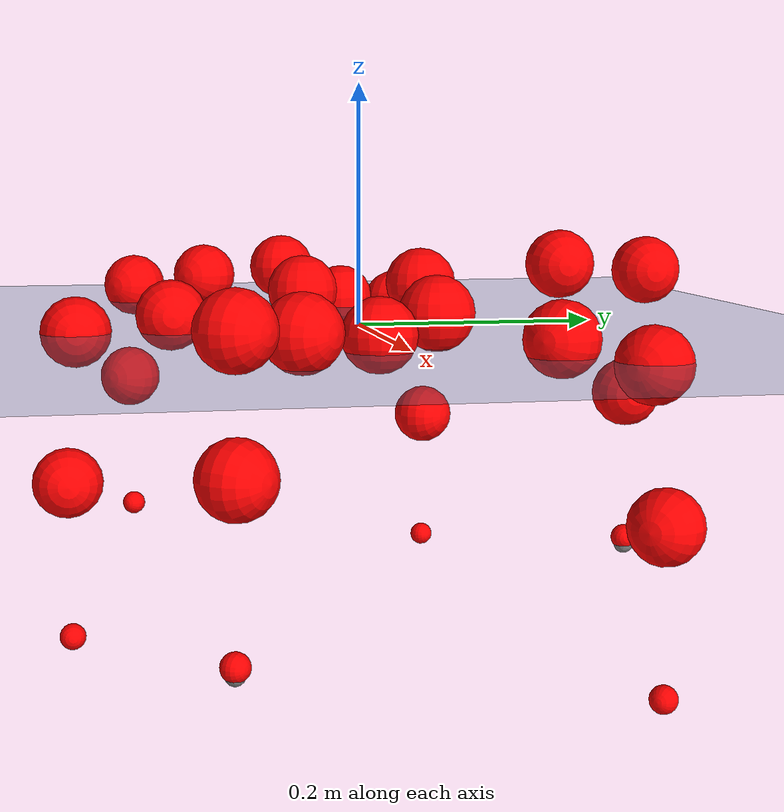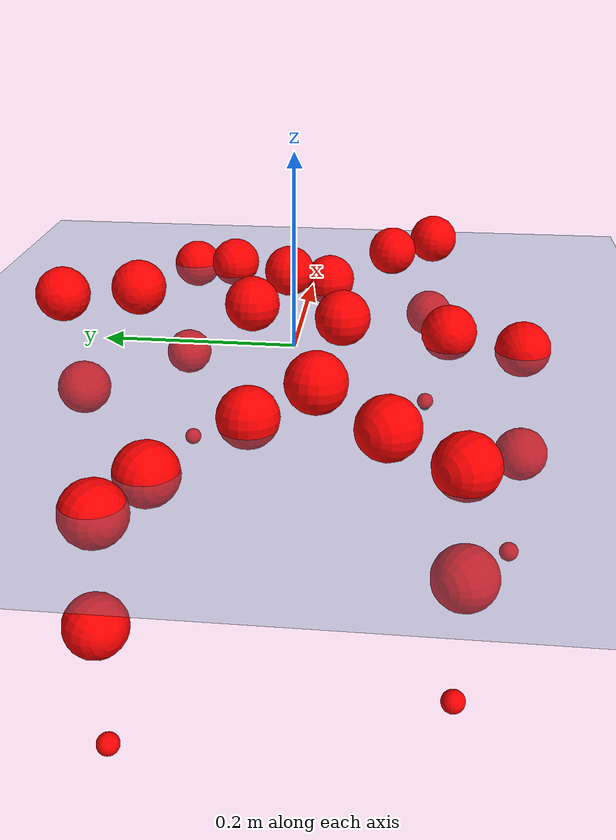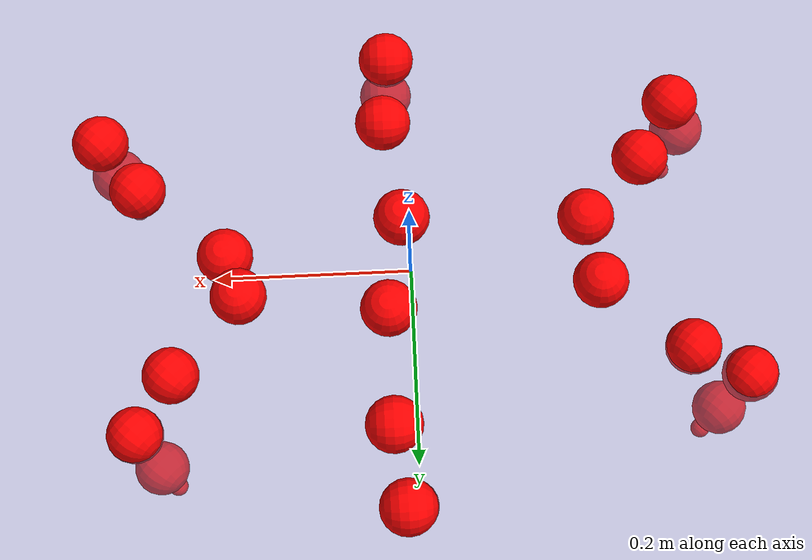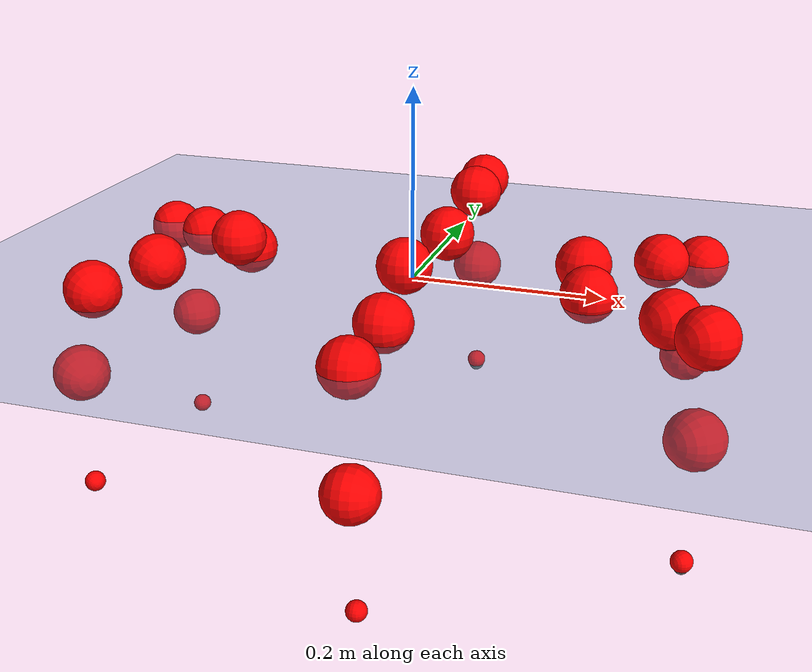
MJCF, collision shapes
<mujoco model="Golem">
  <compiler angle="radian" assetdir="assets" balanceinertia="true" inertiafromgeom="false"/>

  <option timestep="0.005" density="1.2" viscosity="2e-05"/>

  <size nkey="1"/>

  <visual>
    <quality shadowsize="8192"/>
    <map shadowclip="0.5"/>
  </visual>

  <default>
    <default class="/">
      <joint armature="0.01" damping="0.01" frictionloss="0.01"/>
      <geom contype="0" conaffinity="0" group="1" solref="-1000 -80"/>
      <site size="0.01 0.005 0.005" group="5"/>
      <general forcelimited="true" biastype="affine" gainprm="25" biasprm="0 -25 -0.5"/>
      <default class="visual">
        <geom type="mesh" group="2"/>
      </default>
      <default class="collision">
        <geom group="3"/>
      </default>
      <default class="foot">
        <geom size="0.01 0 0" condim="6" group="4" priority="1" solimp="0.015 1 0.01"/>
      </default>
      <default class="reward_collision_sphere">
        <geom group="5" rgba="1 0 0 1"/>
      </default>
    </default>
  </default>

  <asset>
    <texture type="skybox" colorspace="auto" name="//unnamed_texture_0" builtin="gradient" rgb1="0.95 0.95 0.95" rgb2="0.95 0.95 0.95" width="100" height="600"/>
    <texture type="2d" colorspace="auto" name="texplane" builtin="checker" rgb1="0.345 0.575 0.748" rgb2="0.345 0.575 0.748" markrgb="1 1 1" width="512" height="512"/>
    <material name="MatPlane" class="/" texture="texplane" texuniform="true" texrepeat="2 2" specular="0.9"/>
    <mesh name="body" class="/" file="body.stl" scale="0.001 0.001 0.001"/>
    <mesh name="coxa" class="/" file="coxa.stl" scale="0.001 0.001 0.001"/>
    <mesh name="femur" class="/" file="femur.stl" scale="0.001 0.001 0.001"/>
    <mesh name="tibia" class="/" file="tibia.stl" scale="0.001 0.001 0.001"/>
    <mesh name="tarsus" class="/" file="tarsus.stl" scale="0.001 0.001 0.001"/>
  </asset>

  <worldbody>
    <geom name="floor" class="/" size="100 100 0.125" type="plane" group="0" material="MatPlane"/>
    <light name="toplight_shadow" class="/" pos="0 0 5" dir="0.0990148 0.0990148 -0.990148" type="directional" ambient="0.04 0.04 0.04" diffuse="0.55 0.55 0.55" specular="0.12 0.12 0.12"/>
    <light name="toplight_fill" class="/" pos="0 0 5" dir="0.0990148 0.0990148 -0.990148" type="directional" castshadow="false" ambient="0.04 0.04 0.04" diffuse="0.3 0.3 0.3" specular="0.08 0.08 0.08"/>
    <body name="trunk" pos="0.00594934 -0.00627931 0.0074352" quat="0.999993 0.00118913 -0.000194056 0.00352976">
      <inertial pos="-0.0140178 -0.00746678 0.00244493" quat="0.998434 -0.00054372 0.0262671 0.0493971" mass="1.14407" diaginertia="0.0139108 0.000980409 1.71966e-05"/>
      <joint name="//unnamed_joint_0" type="free"/>
      <geom name="//unnamed_geom_1" class="/" pos="0 0 0.0195557" quat="1 0 0 0" type="mesh" rgba="0.9 0.9 0.9 1" mesh="body"/>
      <site name="imu" class="/" pos="0.130852 -0.0290209 0.114291" size="0.00718785"/>
      <camera name="track" class="/" pos="0 -1.34332 0" quat="0.707107 0.707107 0 0" mode="trackcom"/>
      <camera name="ego_camera" class="/" pos="0.153288 0 0.0305557" quat="-0.5 -0.5 0.5 0.5"/>
      <body name="coxa_RR" pos="-0.210237 -0.056113 0.0301423" quat="0.383245 0.000153791 -0.000617712 -0.923647">
        <inertial pos="0.00116363 0.0113884 0.00141905" quat="0.999944 0.00802797 -0.00160958 0.00663311" mass="0.0903082" diaginertia="0.0257581 0.00177611 2.67514e-05"/>
        <joint name="coxa_joint_RR" class="/" pos="0 0 0" axis="0.0358139 0.0861189 -0.995641" range="-2.88706 3.14922" armature="0.00410506" damping="0.0581547" frictionloss="0.00702704"/>
        <geom name="//unnamed_geom_2" class="/" type="mesh" rgba="0.2 0.2 0.2 1" mesh="coxa"/>
        <geom name="//unnamed_geom_3" class="reward_collision_sphere" size="0.0287514" pos="-0.0353742 0 0"/>
        <body name="femur_RR" pos="0.0541965 0.00215035 -0.0111106" quat="0.501585 -0.497946 0.504051 0.496382">
          <inertial pos="-0.00746316 -0.00248415 0.0117248" quat="0.999881 0.00772912 -0.0133282 -0.00111282" mass="0.0959186" diaginertia="0.0214582 0.00157445 2.74036e-05"/>
          <joint name="femur_joint_RR" class="/" pos="0 0 0" axis="-0.0782541 -0.0149249 -0.996822" stiffness="0.0197235" range="-3.13924 2.96662" armature="0.00696285" damping="0.0036089" frictionloss="0.00356359"/>
          <geom name="//unnamed_geom_4" class="/" type="mesh" rgba="0.9 0.9 0.9 1" mesh="femur"/>
          <geom name="//unnamed_geom_5" class="reward_collision_sphere" size="0.0287514"/>
          <body name="tibia_RR" pos="0.0113255 -0.0719719 0.0185478" quat="-0.000134227 1 4.95613e-05 -6.05669e-06">
            <inertial pos="0.00406027 0.0173631 -0.00422383" quat="0.996176 -0.0540816 -0.0344006 -0.0593788" mass="0.0739768" diaginertia="0.0191666 0.00146207 2.52791e-05"/>
            <joint name="tibia_joint_RR" class="/" pos="0 0 0" axis="-0.061964 -0.0181005 0.997914" range="-3.39509 3.2893" armature="0.00756662" damping="0" frictionloss="0.0105154"/>
            <geom name="//unnamed_geom_6" class="/" type="mesh" rgba="0.2 0.2 0.2 1" mesh="tibia"/>
            <geom name="//unnamed_geom_7" class="reward_collision_sphere" size="0.0287514"/>
            <body name="tarsus_RR" pos="0.0917754 0.0175208 0.0110367" quat="0.999983 -0.00177923 -0.00171192 -0.00520934">
              <inertial pos="0.072236 0.00275697 0.0129317" quat="0.551917 0.51652 0.443706 0.481372" mass="0.0679532" diaginertia="0.0269715 0.00129915 3.54822e-05"/>
              <joint name="tarsus_joint_RR" class="/" pos="0 0 0" axis="0.00675806 -0.0110957 0.999916" stiffness="0.0366999" range="-2.88471 3.26224" armature="0.0105896" damping="0" frictionloss="0.00203597"/>
              <geom name="//unnamed_geom_8" class="/" type="mesh" rgba="0.9 0.9 0.9 1" mesh="tarsus"/>
              <geom name="foot_1" class="foot" size="0.00421529" pos="0.132064 0 0" quat="0 -0.707107 0 0.707107"/>
              <geom name="//unnamed_geom_10" class="reward_collision_sphere" size="0.0287514"/>
              <geom name="//unnamed_geom_11" class="reward_collision_sphere" size="0.0107818" pos="0.126757 0 0"/>
              <site name="foot_1" class="foot" pos="0.132064 0 0" quat="0 -0.707107 0 0.707107" size="0.00718785"/>
            </body>
          </body>
        </body>
      </body>
      <body name="coxa_RM" pos="0.000250411 -0.0780243 0.0226696" quat="0.702927 0.00721487 -0.00162666 -0.711223">
        <inertial pos="-0.0131811 -0.00273959 0.0153984" quat="0.999988 -0.00192902 0.00051351 0.00457525" mass="0.0823287" diaginertia="0.0217424 0.00112475 2.82831e-05"/>
        <joint name="coxa_joint_RM" class="/" pos="0 0 0" axis="-0.0104034 0.0326175 -0.999414" range="-3.22494 3.18058" armature="0.00157463" damping="0.0336938" frictionloss="0.00391291"/>
        <geom name="//unnamed_geom_12" class="/" type="mesh" rgba="0.2 0.2 0.2 1" mesh="coxa"/>
        <geom name="//unnamed_geom_13" class="reward_collision_sphere" size="0.0287514" pos="-0.0353742 0 0"/>
        <body name="femur_RM" pos="0.0746915 0.0155476 -0.0163892" quat="0.50099 -0.500943 0.497925 0.500136">
          <inertial pos="-0.0172773 0.0119083 -0.00238465" quat="0.99904 -0.0265183 -0.0157829 0.0310902" mass="0.0895167" diaginertia="0.032991 0.00161867 3.89912e-05"/>
          <joint name="femur_joint_RM" class="/" pos="0 0 0" axis="-0.0017226 0.0676177 -0.99771" range="-3.10927 3.46925" armature="0.00419632" damping="0" frictionloss="0.0112307"/>
          <geom name="//unnamed_geom_14" class="/" type="mesh" rgba="0.9 0.9 0.9 1" mesh="femur"/>
          <geom name="//unnamed_geom_15" class="reward_collision_sphere" size="0.0287514"/>
          <body name="tibia_RM" pos="0.0123995 -0.0762531 -0.00597818" quat="0.000884642 0.999982 0.00318638 0.00510149">
            <inertial pos="0.0121922 -0.0186018 -0.00439816" quat="0.998227 -0.0330338 0.0427903 -0.0249064" mass="0.0780652" diaginertia="0.0264341 0.00152674 3.19617e-05"/>
            <joint name="tibia_joint_RM" class="/" pos="0 0 0" axis="-0.0176461 -0.0272627 0.999473" stiffness="0.04478" range="-3.20986 2.89183" armature="0.0101414" damping="0" frictionloss="0.00683888"/>
            <geom name="//unnamed_geom_16" class="/" type="mesh" rgba="0.2 0.2 0.2 1" mesh="tibia"/>
            <geom name="//unnamed_geom_17" class="reward_collision_sphere" size="0.0287514"/>
            <body name="tarsus_RM" pos="0.122219 0.0102476 0.000421398" quat="0.999999 -0.00142001 0.000859135 -0.000150626">
              <inertial pos="0.0552768 0.00510459 -0.00804604" quat="0.512413 0.488631 0.502331 0.496322" mass="0.0570417" diaginertia="0.0215044 0.00126548 2.0194e-05"/>
              <joint name="tarsus_joint_RM" class="/" pos="0 0 0" axis="-0.0363948 -0.0115196 0.999271" stiffness="0.0287457" range="-2.85845 3.43578" armature="0.00729183" damping="0" frictionloss="0.0122419"/>
              <geom name="//unnamed_geom_18" class="/" type="mesh" rgba="0.9 0.9 0.9 1" mesh="tarsus"/>
              <geom name="foot_2" class="foot" size="0.0038279" pos="0.132064 0 0" quat="0 -0.707107 0 0.707107"/>
              <geom name="//unnamed_geom_20" class="reward_collision_sphere" size="0.0287514"/>
              <geom name="//unnamed_geom_21" class="reward_collision_sphere" size="0.0107818" pos="0.126757 0 0"/>
              <site name="foot_2" class="foot" pos="0.132064 0 0" quat="0 -0.707107 0 0.707107" size="0.00718785"/>
            </body>
          </body>
        </body>
      </body>
      <body name="coxa_RF" pos="0.207556 -0.0413107 0.00402826" quat="0.923993 -0.00350926 -0.0028957 -0.382383">
        <inertial pos="0.00710609 0.0167521 -0.0139273" quat="0.996605 -0.000685173 -0.0603237 -0.0560216" mass="0.102402" diaginertia="0.029676 0.00161197 3.11296e-05"/>
        <joint name="coxa_joint_RF" class="/" pos="0 0 0" axis="0.0552345 0.0509586 -0.997172" range="-3.48139 2.91858" armature="0.0123398" damping="0.0596621" frictionloss="0.00828885"/>
        <geom name="//unnamed_geom_22" class="/" type="mesh" rgba="0.2 0.2 0.2 1" mesh="coxa"/>
        <geom name="//unnamed_geom_23" class="reward_collision_sphere" size="0.0287514" pos="-0.0353742 0 0"/>
        <body name="femur_RF" pos="0.0768234 0.0105662 0.0109679" quat="0.499459 -0.499899 0.500282 0.500359">
          <inertial pos="0.0135911 -0.0166214 -0.00376919" quat="0.999193 0.00909729 0.0388908 -0.0042428" mass="0.0697176" diaginertia="0.0200796 0.00103309 2.29311e-05"/>
          <joint name="femur_joint_RF" class="/" pos="0 0 0" axis="0.0138096 0.022791 -0.999645" range="-3.05097 3.35108" armature="0.00629325" damping="0.0310098" frictionloss="0.0109996"/>
          <geom name="//unnamed_geom_24" class="/" type="mesh" rgba="0.9 0.9 0.9 1" mesh="femur"/>
          <geom name="//unnamed_geom_25" class="reward_collision_sphere" size="0.0287514"/>
          <body name="tibia_RF" pos="-0.00610854 -0.0616601 -0.00998687" quat="0.000455088 0.999999 -0.000967646 -0.00068072">
            <inertial pos="-0.00180904 0.000553974 0.0180585" quat="0.997003 0.0512827 -0.0541538 0.0205772" mass="0.0770745" diaginertia="0.0274653 0.00181347 2.40752e-05"/>
            <joint name="tibia_joint_RF" class="/" pos="0 0 0" axis="0.0282809 -0.0377815 0.998886" stiffness="0.0277368" range="-3.07465 2.91327" armature="0.00581839" damping="0" frictionloss="0.00305312"/>
            <geom name="//unnamed_geom_26" class="/" type="mesh" rgba="0.2 0.2 0.2 1" mesh="tibia"/>
            <geom name="//unnamed_geom_27" class="reward_collision_sphere" size="0.0287514"/>
            <body name="tarsus_RF" pos="0.09895 -0.00230208 0.000656406" quat="0.999976 0.0036517 -0.00582251 -0.00105098">
              <inertial pos="0.0811592 -0.00664571 -0.00820654" quat="0.506105 0.488116 0.497209 0.508314" mass="0.0646251" diaginertia="0.0213597 0.0013962 2.7665e-05"/>
              <joint name="tarsus_joint_RF" class="/" pos="0 0 0" axis="-0.0132447 0.0578262 0.998239" stiffness="0.0449912" range="-3.42589 3.12478" armature="0.00556939" damping="0.0389816" frictionloss="0.0049138"/>
              <geom name="//unnamed_geom_28" class="/" type="mesh" rgba="0.9 0.9 0.9 1" mesh="tarsus"/>
              <geom name="foot_3" class="foot" size="0.00753109" pos="0.132064 0 0" quat="0 -0.707107 0 0.707107"/>
              <geom name="//unnamed_geom_30" class="reward_collision_sphere" size="0.0287514"/>
              <geom name="//unnamed_geom_31" class="reward_collision_sphere" size="0.0107818" pos="0.126757 0 0"/>
              <site name="foot_3" class="foot" pos="0.132064 0 0" quat="0 -0.707107 0 0.707107" size="0.00718785"/>
            </body>
          </body>
        </body>
      </body>
      <body name="coxa_LR" pos="-0.224146 0.0526897 0.00056769" quat="0.383525 0.00390644 0.000287148 0.923522">
        <inertial pos="0.0135248 0.0142523 -0.000571732" quat="0.997572 -0.0309791 0.0611118 -0.01251" mass="0.0801827" diaginertia="0.0205154 0.00186863 3.82423e-05"/>
        <joint name="coxa_joint_LR" class="/" pos="0 0 0" axis="0.0117175 -0.00257125 -0.999928" range="-2.90759 2.93365" armature="0.00356988" damping="0.00920586" frictionloss="0.00576591"/>
        <geom name="//unnamed_geom_32" class="/" type="mesh" rgba="0.2 0.2 0.2 1" mesh="coxa"/>
        <geom name="//unnamed_geom_33" class="reward_collision_sphere" size="0.0287514" pos="-0.0353742 0 0"/>
        <body name="femur_LR" pos="0.0782619 0.013075 -0.0134427" quat="0.500098 -0.499099 0.497742 0.503046">
          <inertial pos="-0.00522818 0.0187967 -0.00636227" quat="1 -0.000411608 0.000131912 -0.000323642" mass="0.0774783" diaginertia="0.0279483 0.00115336 3.28654e-05"/>
          <joint name="femur_joint_LR" class="/" pos="0 0 0" axis="-0.000271058 0.000165559 1" stiffness="0.0328604" range="-3.45989 3.16084" armature="0.00881756" damping="0.0978863" frictionloss="0.00745567"/>
          <geom name="//unnamed_geom_34" class="/" type="mesh" rgba="0.9 0.9 0.9 1" mesh="femur"/>
          <geom name="//unnamed_geom_35" class="reward_collision_sphere" size="0.0287514"/>
          <body name="tibia_LR" pos="0.00715144 -0.0606816 0.0182731" quat="-0.00509285 0.999984 0.000641063 0.00244968">
            <inertial pos="-0.0116915 0.0142039 0.0114934" quat="0.996996 0.0591072 -0.0402743 0.0297039" mass="0.063118" diaginertia="0.0245911 0.00143255 2.43618e-05"/>
            <joint name="tibia_joint_LR" class="/" pos="0 0 0" axis="-0.0355535 0.0255057 -0.999042" range="-3.36655 2.81394" armature="0.00433679" damping="0.0638149" frictionloss="0.00714249"/>
            <geom name="//unnamed_geom_36" class="/" type="mesh" rgba="0.2 0.2 0.2 1" mesh="tibia"/>
            <geom name="//unnamed_geom_37" class="reward_collision_sphere" size="0.0287514"/>
            <body name="tarsus_LR" pos="0.116209 -0.00203575 0.0181876" quat="0.999977 0.00478245 -0.00205405 -0.0043119">
              <inertial pos="0.0768471 0.0173366 0.0160286" quat="0.467731 0.503648 0.491694 0.534606" mass="0.0693141" diaginertia="0.0195051 0.00151545 3.11077e-05"/>
              <joint name="tarsus_joint_LR" class="/" pos="0 0 0" axis="-0.0124731 0.0794079 -0.996764" stiffness="0.0780238" range="-2.94139 3.37698" armature="0.0123147" damping="0.073672" frictionloss="0.011467"/>
              <geom name="//unnamed_geom_38" class="/" type="mesh" rgba="0.9 0.9 0.9 1" mesh="tarsus"/>
              <geom name="foot_4" class="foot" size="0.00219747" pos="0.132064 0 0" quat="0.707107 0 -0.707107 0"/>
              <geom name="//unnamed_geom_40" class="reward_collision_sphere" size="0.0287514"/>
              <geom name="//unnamed_geom_41" class="reward_collision_sphere" size="0.0107818" pos="0.126757 0 0"/>
              <site name="foot_4" class="foot" pos="0.132064 0 0" quat="0.707107 0 -0.707107 0" size="0.00718785"/>
            </body>
          </body>
        </body>
      </body>
      <body name="coxa_LM" pos="0.0179594 0.0887127 0.0286935" quat="0.706871 0.000713442 3.44782e-05 0.707342">
        <inertial pos="0.00892995 0.0134281 -0.00911414" quat="0.996954 0.00766448 -0.0763431 0.0139548" mass="0.0682196" diaginertia="0.0158545 0.00106903 2.03533e-05"/>
        <joint name="coxa_joint_LM" class="/" pos="0 0 0" axis="0.036516 0.0836735 -0.995824" stiffness="0.045308" range="-3.20133 2.99526" armature="0.0045207" damping="0" frictionloss="0.00284403"/>
        <geom name="//unnamed_geom_42" class="/" type="mesh" rgba="0.2 0.2 0.2 1" mesh="coxa"/>
        <geom name="//unnamed_geom_43" class="reward_collision_sphere" size="0.0287514" pos="-0.0353742 0 0"/>
        <body name="femur_LM" pos="0.0850402 4.58744e-05 0.0135515" quat="0.500139 -0.499907 0.499918 0.500036">
          <inertial pos="-0.0133501 0.00580248 0.00758475" quat="0.997584 0.0637792 -0.0153477 -0.0228436" mass="0.0536581" diaginertia="0.022613 0.000882335 2.42383e-05"/>
          <joint name="femur_joint_LM" class="/" pos="0 0 0" axis="-0.0108483 0.00178272 0.99994" range="-3.2983 3.04878" armature="0.00854014" damping="0" frictionloss="0.0118823"/>
          <geom name="//unnamed_geom_44" class="/" type="mesh" rgba="0.9 0.9 0.9 1" mesh="femur"/>
          <geom name="//unnamed_geom_45" class="reward_collision_sphere" size="0.0287514"/>
          <body name="tibia_LM" pos="0.00706275 -0.0797687 0.0097061" quat="0.00690776 0.999972 0.000741781 -0.00276211">
            <inertial pos="-0.0123179 -0.00317772 0.0154102" quat="0.996779 0.0471844 0.0570923 0.0307626" mass="0.083592" diaginertia="0.0255467 0.00113896 3.135e-05"/>
            <joint name="tibia_joint_LM" class="/" pos="0 0 0" axis="0.000891798 0.0567405 -0.998389" stiffness="0.0826053" range="-3.09847 3.14226" armature="0.00792246" damping="0" frictionloss="0.0124267"/>
            <geom name="//unnamed_geom_46" class="/" type="mesh" rgba="0.2 0.2 0.2 1" mesh="tibia"/>
            <geom name="//unnamed_geom_47" class="reward_collision_sphere" size="0.0287514"/>
            <body name="tarsus_LM" pos="0.105285 -0.0152462 -0.00334479" quat="0.99997 -0.00428303 -0.00574069 -0.00303702">
              <inertial pos="0.0725876 0.00213344 -0.0112348" quat="0.511062 0.557621 0.474102 0.450669" mass="0.0634032" diaginertia="0.0186359 0.00161937 2.809e-05"/>
              <joint name="tarsus_joint_LM" class="/" pos="0 0 0" axis="-0.0844459 0.0310829 -0.995943" range="-3.23572 3.22994" armature="0.00909699" damping="0.00306447" frictionloss="0.00144216"/>
              <geom name="//unnamed_geom_48" class="/" type="mesh" rgba="0.9 0.9 0.9 1" mesh="tarsus"/>
              <geom name="foot_5" class="foot" size="0.00849293" pos="0.132064 0 0" quat="0.707107 0 -0.707107 0"/>
              <geom name="//unnamed_geom_50" class="reward_collision_sphere" size="0.0287514"/>
              <geom name="//unnamed_geom_51" class="reward_collision_sphere" size="0.0107818" pos="0.126757 0 0"/>
              <site name="foot_5" class="foot" pos="0.132064 0 0" quat="0.707107 0 -0.707107 0" size="0.00718785"/>
            </body>
          </body>
        </body>
      </body>
      <body name="coxa_LF" pos="0.193601 0.0554585 0.0176972" quat="0.923037 0.00120832 -0.00233952 0.384701">
        <inertial pos="4.08974e-05 -6.26034e-05 -0.0154426" quat="0.997636 -0.0185146 -0.0244708 -0.0614848" mass="0.0895699" diaginertia="0.0286381 0.00113658 3.22425e-05"/>
        <joint name="coxa_joint_LF" class="/" pos="0 0 0" axis="-0.0706788 0.0199427 -0.9973" range="-3.01939 3.16662" armature="0.013054" damping="0.0164484" frictionloss="0.000489797"/>
        <geom name="//unnamed_geom_52" class="/" type="mesh" rgba="0.2 0.2 0.2 1" mesh="coxa"/>
        <geom name="//unnamed_geom_53" class="reward_collision_sphere" size="0.0287514" pos="-0.0353742 0 0"/>
        <body name="femur_LF" pos="0.0674362 0.00245202 -0.0140924" quat="0.502469 -0.499563 0.49935 0.49861">
          <inertial pos="0.0182777 0.00185583 -0.0187437" quat="0.999762 -0.0176027 0.0124246 -0.00339864" mass="0.0801698" diaginertia="0.0173123 0.00121926 2.48513e-05"/>
          <joint name="femur_joint_LF" class="/" pos="0 0 0" axis="0.000740865 -0.00452197 0.99999" range="-3.21016 3.21912" armature="0.00293016" damping="0" frictionloss="0.00457193"/>
          <geom name="//unnamed_geom_54" class="/" type="mesh" rgba="0.9 0.9 0.9 1" mesh="femur"/>
          <geom name="//unnamed_geom_55" class="reward_collision_sphere" size="0.0287514"/>
          <body name="tibia_LF" pos="0.0163508 -0.0661637 0.0119513" quat="0.00336317 0.999982 -0.000781628 -0.00489689">
            <inertial pos="0.00990597 0.0181306 0.00259481" quat="0.999991 0.002753 -0.00313442 0.00109968" mass="0.0809919" diaginertia="0.0343898 0.00172111 2.93664e-05"/>
            <joint name="tibia_joint_LF" class="/" pos="0 0 0" axis="-0.000289448 -0.0160648 -0.999871" stiffness="0.0414161" range="-3.08648 3.03226" armature="0.00182424" damping="0.0640606" frictionloss="0.00612039"/>
            <geom name="//unnamed_geom_56" class="/" type="mesh" rgba="0.2 0.2 0.2 1" mesh="tibia"/>
            <geom name="//unnamed_geom_57" class="reward_collision_sphere" size="0.0287514"/>
            <body name="tarsus_LF" pos="0.11833 0.00233281 -0.0173913" quat="0.999996 -0.00026956 0.000928391 -0.00283571">
              <inertial pos="0.0649188 -0.0114997 0.00590107" quat="0.480327 0.463335 0.506588 0.545871" mass="0.107228" diaginertia="0.0247241 0.0019832 2.86323e-05"/>
              <joint name="tarsus_joint_LF" class="/" pos="0 0 0" axis="0.0410201 -0.0259116 -0.998822" stiffness="0.000233639" range="-3.27744 3.1566" armature="0.0013293" damping="0.0753666" frictionloss="0.013585"/>
              <geom name="//unnamed_geom_58" class="/" type="mesh" rgba="0.9 0.9 0.9 1" mesh="tarsus"/>
              <geom name="foot_6" class="foot" size="0.0047232" pos="0.132064 0 0" quat="0.707107 0 -0.707107 0"/>
              <geom name="//unnamed_geom_60" class="reward_collision_sphere" size="0.0287514"/>
              <geom name="//unnamed_geom_61" class="reward_collision_sphere" size="0.0107818" pos="0.126757 0 0"/>
              <site name="foot_6" class="foot" pos="0.132064 0 0" quat="0.707107 0 -0.707107 0" size="0.00718785"/>
            </body>
          </body>
        </body>
      </body>
    </body>
  </worldbody>

  <contact>
    <pair class="/" geom1="floor" geom2="foot_1" name="//unnamed_contact_0"/>
    <pair class="/" geom1="floor" geom2="foot_2" name="//unnamed_contact_1"/>
    <pair class="/" geom1="floor" geom2="foot_3" name="//unnamed_contact_2"/>
    <pair class="/" geom1="floor" geom2="foot_4" name="//unnamed_contact_3"/>
    <pair class="/" geom1="floor" geom2="foot_5" name="//unnamed_contact_4"/>
    <pair class="/" geom1="floor" geom2="foot_6" name="//unnamed_contact_5"/>
  </contact>

  <actuator>
    <general name="coxa_joint_RR" class="/" joint="coxa_joint_RR" forcerange="-7.00824 7.00824" gainprm="11.0054" biasprm="0 -11.0054 -0.435644"/>
    <general name="femur_joint_RR" class="/" joint="femur_joint_RR" forcerange="-6.18142 6.18142" gainprm="11.0054" biasprm="0 -11.0054 -0.435644"/>
    <general name="tibia_joint_RR" class="/" joint="tibia_joint_RR" forcerange="-6.82723 6.82723" gainprm="11.0054" biasprm="0 -11.0054 -0.435644"/>
    <general name="tarsus_joint_RR" class="/" joint="tarsus_joint_RR" forcerange="-2.16031 2.16031" gainprm="11.0054" biasprm="0 -11.0054 -0.435644"/>
    <general name="coxa_joint_RM" class="/" joint="coxa_joint_RM" forcerange="-4.28488 4.28488" gainprm="11.0054" biasprm="0 -11.0054 -0.435644"/>
    <general name="femur_joint_RM" class="/" joint="femur_joint_RM" forcerange="-5.20646 5.20646" gainprm="11.0054" biasprm="0 -11.0054 -0.435644"/>
    <general name="tibia_joint_RM" class="/" joint="tibia_joint_RM" forcerange="-4.86714 4.86714" gainprm="11.0054" biasprm="0 -11.0054 -0.435644"/>
    <general name="tarsus_joint_RM" class="/" joint="tarsus_joint_RM" forcerange="-1.82824 1.82824" gainprm="11.0054" biasprm="0 -11.0054 -0.435644"/>
    <general name="coxa_joint_RF" class="/" joint="coxa_joint_RF" forcerange="-3.03568 3.03568" gainprm="11.0054" biasprm="0 -11.0054 -0.435644"/>
    <general name="femur_joint_RF" class="/" joint="femur_joint_RF" forcerange="-8.55302 8.55302" gainprm="11.0054" biasprm="0 -11.0054 -0.435644"/>
    <general name="tibia_joint_RF" class="/" joint="tibia_joint_RF" forcerange="-2.78809 2.78809" gainprm="11.0054" biasprm="0 -11.0054 -0.435644"/>
    <general name="tarsus_joint_RF" class="/" joint="tarsus_joint_RF" forcerange="-7.82126 7.82126" gainprm="11.0054" biasprm="0 -11.0054 -0.435644"/>
    <general name="coxa_joint_LR" class="/" joint="coxa_joint_LR" forcerange="-7.58581 7.58581" gainprm="11.0054" biasprm="0 -11.0054 -0.435644"/>
    <general name="femur_joint_LR" class="/" joint="femur_joint_LR" forcerange="-4.5883 4.5883" gainprm="11.0054" biasprm="0 -11.0054 -0.435644"/>
    <general name="tibia_joint_LR" class="/" joint="tibia_joint_LR" forcerange="-5.18246 5.18246" gainprm="11.0054" biasprm="0 -11.0054 -0.435644"/>
    <general name="tarsus_joint_LR" class="/" joint="tarsus_joint_LR" forcerange="-7.60048 7.60048" gainprm="11.0054" biasprm="0 -11.0054 -0.435644"/>
    <general name="coxa_joint_LM" class="/" joint="coxa_joint_LM" forcerange="-6.47249 6.47249" gainprm="11.0054" biasprm="0 -11.0054 -0.435644"/>
    <general name="femur_joint_LM" class="/" joint="femur_joint_LM" forcerange="-7.70235 7.70235" gainprm="11.0054" biasprm="0 -11.0054 -0.435644"/>
    <general name="tibia_joint_LM" class="/" joint="tibia_joint_LM" forcerange="-7.07783 7.07783" gainprm="11.0054" biasprm="0 -11.0054 -0.435644"/>
    <general name="tarsus_joint_LM" class="/" joint="tarsus_joint_LM" forcerange="-6.5558 6.5558" gainprm="11.0054" biasprm="0 -11.0054 -0.435644"/>
    <general name="coxa_joint_LF" class="/" joint="coxa_joint_LF" forcerange="-8.30076 8.30076" gainprm="11.0054" biasprm="0 -11.0054 -0.435644"/>
    <general name="femur_joint_LF" class="/" joint="femur_joint_LF" forcerange="-7.59108 7.59108" gainprm="11.0054" biasprm="0 -11.0054 -0.435644"/>
    <general name="tibia_joint_LF" class="/" joint="tibia_joint_LF" forcerange="-2.9179 2.9179" gainprm="11.0054" biasprm="0 -11.0054 -0.435644"/>
    <general name="tarsus_joint_LF" class="/" joint="tarsus_joint_LF" forcerange="-7.00406 7.00406" gainprm="11.0054" biasprm="0 -11.0054 -0.435644"/>
  </actuator>

  <sensor>
    <gyro site="imu" name="imu_angular_velocity"/>
    <velocimeter site="imu" name="imu_linear_velocity"/>
    <framelinvel objtype="site" objname="foot_1" name="foot_1_global_linear_velocity"/>
    <framelinvel objtype="site" objname="foot_2" name="foot_2_global_linear_velocity"/>
    <framelinvel objtype="site" objname="foot_3" name="foot_3_global_linear_velocity"/>
    <framelinvel objtype="site" objname="foot_4" name="foot_4_global_linear_velocity"/>
    <framelinvel objtype="site" objname="foot_5" name="foot_5_global_linear_velocity"/>
    <framelinvel objtype="site" objname="foot_6" name="foot_6_global_linear_velocity"/>
  </sensor>

  <keyframe>
    <key name="home" qpos="0 0 0.1457 1 0 0 0 0 0 0 0 0 0 0 0 0 0 0 0 0 0 0 0 0 0 0 0 0 0 0 0"/>
  </keyframe>
</mujoco>
